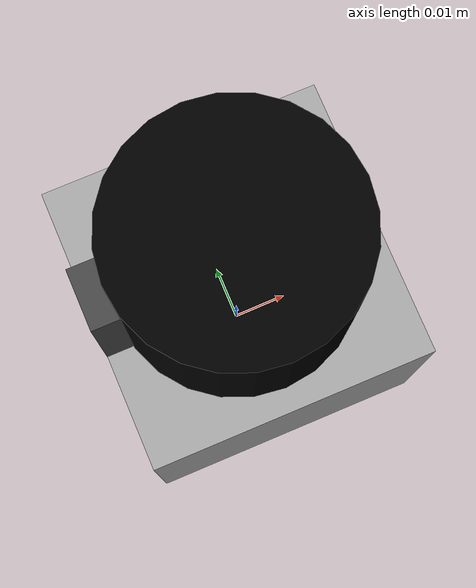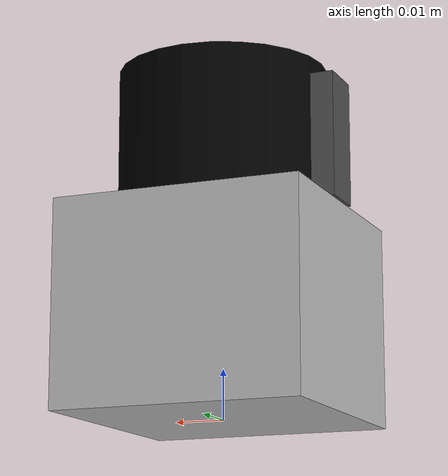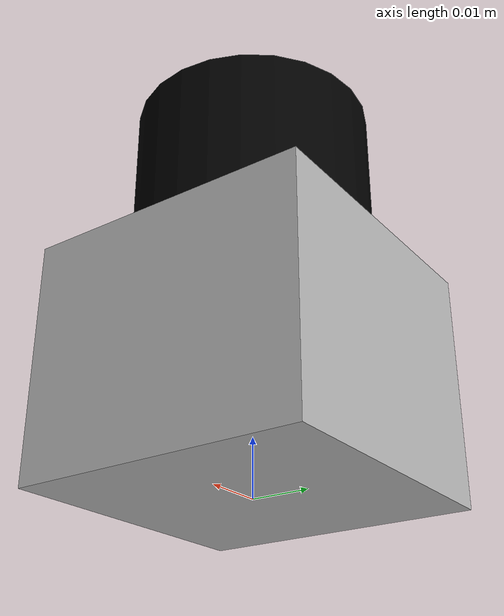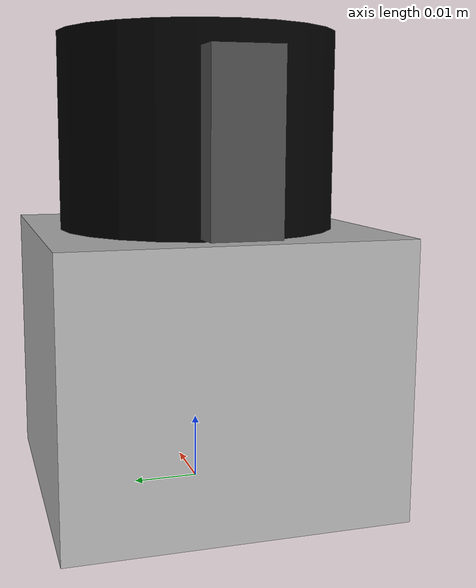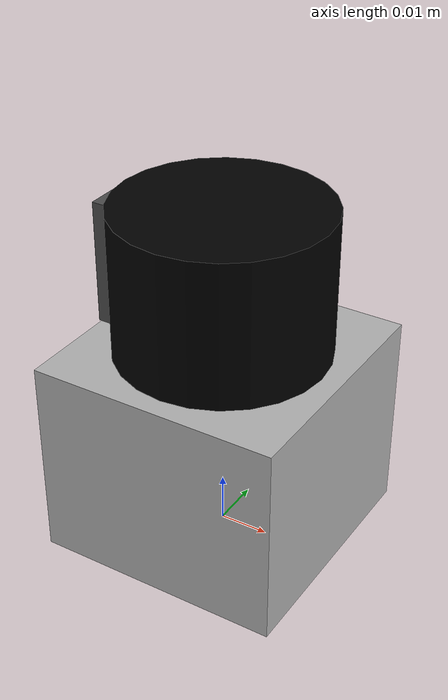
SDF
<?xml version="1.0" ?>
<sdf version="1.5">
  <model name="hokuyo_ros">
    <!-- The origin is the center of the bottom -->
    <pose>0 0 0.035 0 0 0</pose>
    <link name="hokuyo_link">
      <inertial>
        <mass>0.1</mass>
        <inertia>
          <ixx>0.6205208333e-04</ixx>
          <iyy>0.6205208333e-04</iyy>
          <izz>4.1927083333e-05</izz>
        </inertia>
      </inertial>
      <visual name="visual-base">
        <pose>0 0 -0.0145 0 0 0</pose>
        <geometry>
          <box>
            <size>0.05 0.05 0.041</size>
          </box>
        </geometry>
        <material>
          <ambient>0.3 0.3 0.3 1</ambient>
          <diffuse>0.7 0.7 0.7 1</diffuse>
          <specular>0.1 0.1 0.1 1</specular>
          <emissive>0 0 0 0</emissive>
        </material>
      </visual>
      <visual name="visual-top">
        <pose>0 0 0.0205 0 0 0</pose>
        <geometry>
          <cylinder>
            <radius>0.021</radius>
            <length>0.029</length>
          </cylinder>
        </geometry>
        <material>
          <ambient>0 0 0 1</ambient>
          <diffuse>0 0 0 1</diffuse>
          <specular>0.1 0.1 0.1 1</specular>
          <emissive>0 0 0 0</emissive>
        </material>
      </visual>
      <visual name="visual-top-back">
        <pose>-0.02 0 0.019 0 0 0</pose>
        <geometry>
          <box>
            <size>0.01 0.01 0.025</size>
          </box>
        </geometry>
        <material>
          <ambient>0.1 0.1 0.1 1</ambient>
          <diffuse>0.3 0.3 0.3 1</diffuse>
          <specular>0.1 0.1 0.1 1</specular>
          <emissive>0 0 0 0</emissive>
        </material>
      </visual>
      <collision name="collision-base">
        <pose>0 0 -0.0145 0 0 0</pose>
        <geometry>
          <box>
            <size>0.05 0.05 0.041</size>
          </box>
        </geometry>
      </collision>
      <collision name="collision-top">
        <pose>0 0 0.0205 0 0 0</pose>
        <geometry>
          <cylinder>
            <radius>0.021</radius>
            <length>0.029</length>
          </cylinder>
        </geometry>
      </collision>
      <sensor type="ray" name="lms200">
        <always_on>true</always_on>
        <update_rate>30</update_rate>
        <pose>0 0 0.01815 0 0 0</pose> <!-- From URG04LX Spec -->
        <visualize>false</visualize>
        <ray>
          <scan>
            <horizontal>
		          <samples>1040</samples>
		          <resolution>1</resolution>
		          <min_angle>-2.268928</min_angle> <!-- 90deg: -1.570796 -->
		          <max_angle>2.268928</max_angle>  <!-- 90deg: 1.570796  -->
            </horizontal>
          </scan>
          <range>
            <min>0.15</min>
            <max>5.6</max> <!-- From URG04LX Spec -->
            <resolution>0.001</resolution> <!-- From URG04LX Spec -->
          </range>
        </ray>

        <plugin name="gazebo_ros_hokuyo_controller" filename="libgazebo_ros_laser.so">
          <robotNamespace>robot1</robotNamespace>
          <topicName>scan</topicName>
          <gaussianNoise>0.005</gaussianNoise>
          <alwaysOn>true</alwaysOn>
          <updateRate>30</updateRate>
          <frameName>hokuyo_link</frameName>
        </plugin>
      </sensor>
    </link>
  </model>
</sdf>
